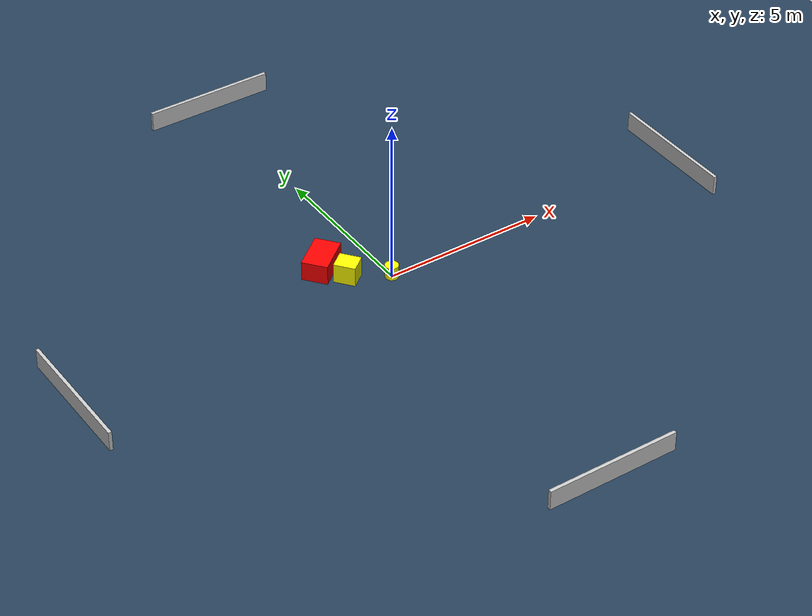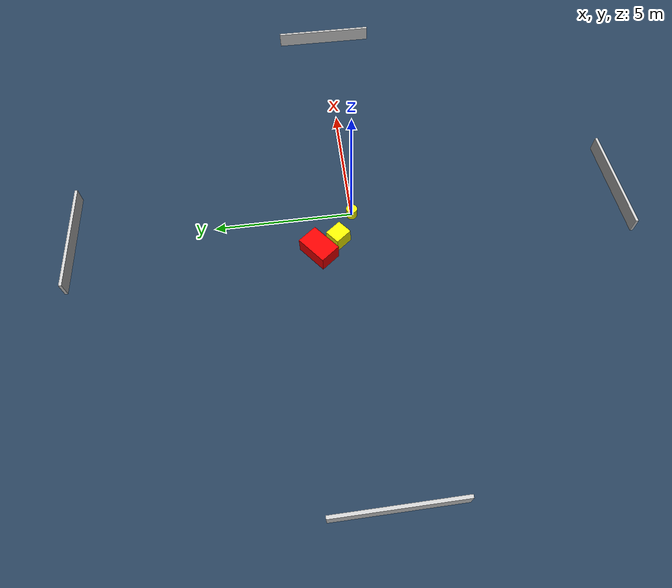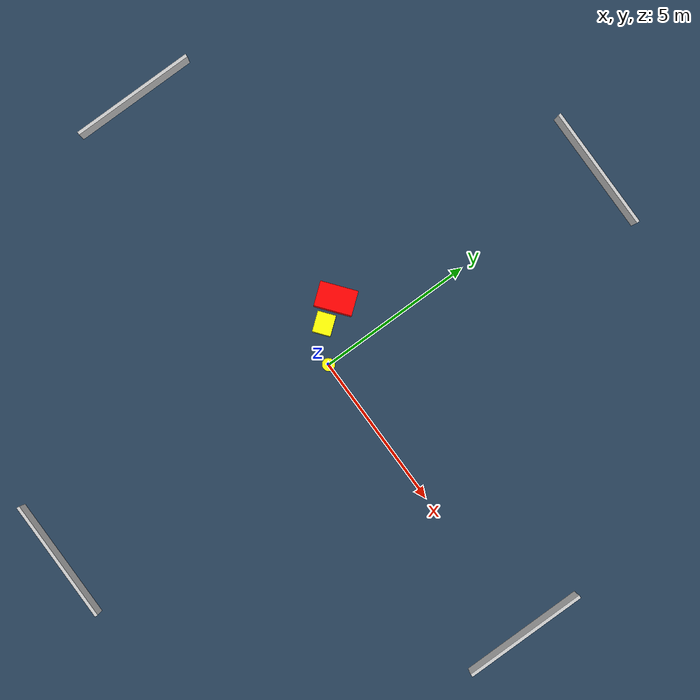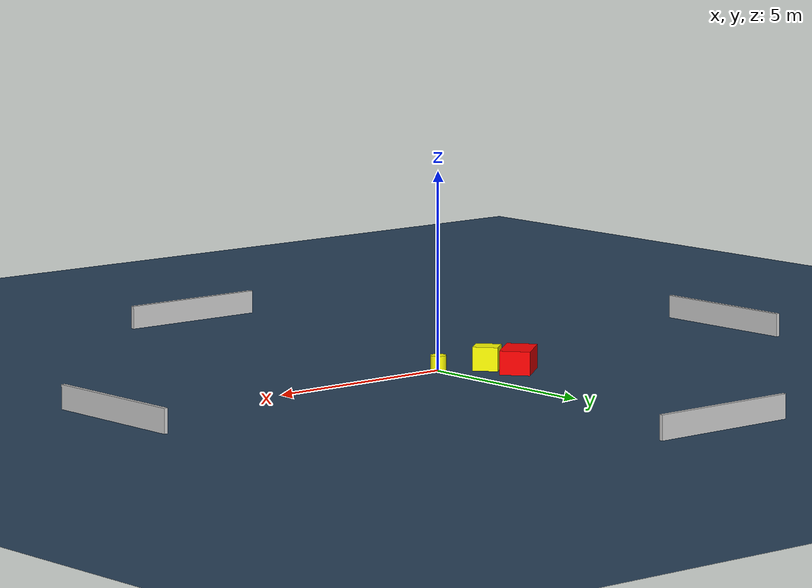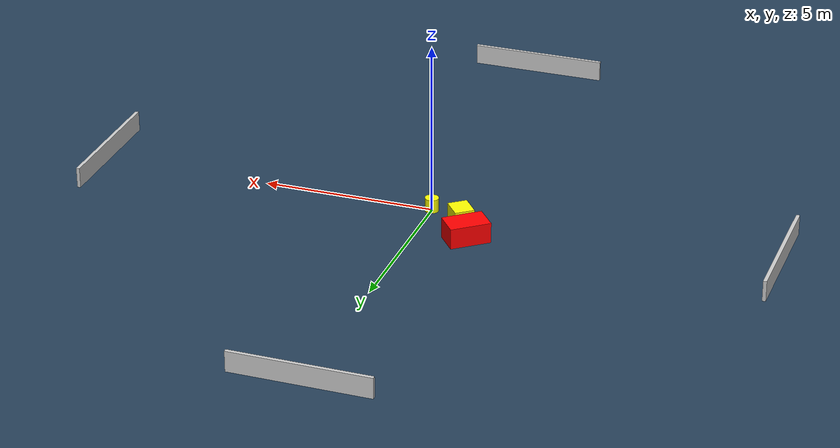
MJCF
<?xml version="1.0" ?>
<mujoco model="generated_environment">
  <option timestep="0.01" integrator="RK4" cone="elliptic"/>
  <default>
    <geom density="1"/>
  </default>
  <asset>
    <texture builtin="gradient" height="3072" name="skybox" rgb1="0.3 0.5 0.7" rgb2="0 0 0" type="skybox" width="512"/>
    <texture builtin="checker" height="300" name="groundplane" rgb1="0.2 0.3 0.4" rgb2="0.1 0.2 0.3" type="2d" width="300"/>
    <material name="groundplane" reflectance="0.2" texrepeat="5 5" texture="groundplane"/>
  </asset>
  <worldbody>
    <light dir="0 0 -1" directional="true" pos="0 0 1.5"/>
    <geom condim="3" friction="0.5 0.005 0.001" material="groundplane" name="floor" pos="0 0 0" size="0 0 0.05" type="plane"/>
    <body name="walls">
      <geom name="wall_1" condim="4" pos="-10.0 0.0 0.3" rgba="0.800000011920929 0.800000011920929 0.800000011920929 1.0" size="0.05 2.0 0.3" type="box"/>
      <geom name="wall_2" condim="4" pos="10.0 0.0 0.3" rgba="0.800000011920929 0.800000011920929 0.800000011920929 1.0" size="0.05 2.0 0.3" type="box"/>
      <geom name="wall_3" condim="4" pos="0.0 -10.0 0.3" rgba="0.800000011920929 0.800000011920929 0.800000011920929 1.0" size="2.0 0.05 0.3" type="box"/>
      <geom name="wall_4" condim="4" pos="0.0 10.0 0.3" rgba="0.800000011920929 0.800000011920929 0.800000011920929 1.0" size="2.0 0.05 0.3" type="box"/>
    </body>
    <body name="robot">
      <joint name="joint_x" type="slide" pos="0 0 0" axis="1 0 0"/>
      <joint name="joint_y" type="slide" pos="0 0 0" axis="0 1 0"/>
      <geom name="robot" type="cylinder" pos="0.0 0.0 0.2" size="0.2 0.2 0.0" mass="5.0" friction="1.0 0.005 0.0001" condim="4" rgba="1.0 1.0 0.0 1.0"/>
    </body>
    <body name="obstacle_1_movable">
      <geom name="obstacle_1_movable" condim="4" pos="-1.0707596915033188 0.6136311253005095 0.3" euler="0 0 308.3729796560257" friction="0.0 0.005 0.001" rgba="1.0 1.0 0.0 1.0" size="0.3223757325712043 0.2846344238044093 0.3" type="box" mass="0.1"/>
      <joint type="free"/>
    </body>
    <body name="obstacle_2_static">
      <geom name="obstacle_2_static" condim="4" pos="-1.470998156979212 1.3447956748060605 0.3" euler="0 0 38.56694939880914" friction="0.0 0.005 0.001" rgba="1.0 0.0 0.0 1.0" size="0.590602149722995 0.38636790993861436 0.3" type="box"/>
    </body>
  </worldbody>
  <actuator>
    <motor name="actuator_x" joint="joint_x" gear="1" ctrlrange="-1 1"/>
    <motor name="actuator_y" joint="joint_y" gear="1" ctrlrange="-1 1"/>
  </actuator>
</mujoco>
